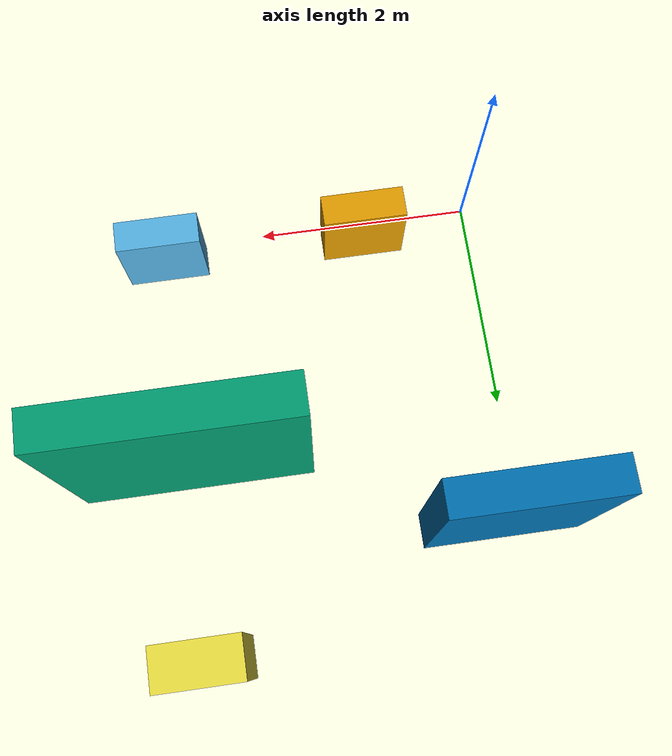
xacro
<?xml version="1.0" ?>
<robot name="library_demo"
       xmlns:xacro="http://www.ros.org/wiki/xacro">

  <!-- Gazebo/Moveit "world" with two bookshelves and one "counter"

       (C) 2021 fnh, hendrich@informatik.uni-hamburg.de
  -->
  <property name="r0" value="0.3" />
  <property name="dr" value="0.04" />
  <property name="pi2" value="6.283" />

  <xacro:include filename="$(find tams_books_world)/urdf/book_cube.xacro" />
  <xacro:include filename="$(find tams_books_world)/urdf/vintage_shelf_1.xacro" />
  <xacro:include filename="$(find tams_books_world)/urdf/vintage_shelf_2.xacro" />
  <xacro:include filename="$(find tams_books_world)/urdf/vintage_shelf_3.xacro" />
  <xacro:include filename="$(find tams_books_world)/urdf/vintage_shelf_4.xacro" />
  <xacro:include filename="$(find tams_books_world)/urdf/vintage_shelf_5.xacro" />

  <link name="world" />

  <!-- two bookshelves on floating joints -->

  <joint name="vintage_shelf_1_joint" type="floating">
    <parent link="world" />
    <child  link="vintage_shelf_1_link" />
    <origin xyz="1 0 0" rpy="0 0 0" />
  </joint>

  <joint name="vintage_shelf_2_joint" type="floating">
    <parent link="world" />
    <child  link="vintage_shelf_2_link" />
    <origin xyz="3 0 0" rpy="0 0 0" />
  </joint>

  <joint name="vintage_shelf_3_joint" type="floating">
    <parent link="world" />
    <child  link="vintage_shelf_3_link" />
    <origin xyz="3 2 0" rpy="0 0 0" />
  </joint>

  <joint name="vintage_shelf_4_joint" type="floating">
    <parent link="world" />
    <child  link="vintage_shelf_4_link" />
    <origin xyz="3 4 0" rpy="0 0 0" />
  </joint>

  <joint name="vintage_shelf_5_joint" type="floating">
    <parent link="world" />
    <child  link="vintage_shelf_5_link" />
    <origin xyz="0 3 0" rpy="0 0 0" />
  </joint>

</robot>

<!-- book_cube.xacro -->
<robot name="book_cube"
       xmlns:controller="http://playerstage.sourceforge.net/gazebo/xmlschema/#controller"
       xmlns:interface="http://playerstage.sourceforge.net/gazebo/xmlschema/#interface"
       xmlns:sensor="http://playerstage.sourceforge.net/gazebo/xmlschema/#sensor"
       xmlns:xacro="http://www.ros.org/wiki/xacro">
  <!--
       basic ROS xacro macro for a "book": a cube with textures.
       Origin and center of mass are at the center of the mesh.

       (C) 2019 fnh, hendrich@informatik.uni-hamburg.de
  -->

<xacro:macro name="book_cube" params="name weight mesh xsize ysize zsize">

  <!-- main body with Collada mesh for both visual and collision -->
  <link name="${name}_link">
    <inertial>
      <mass value="${weight}"/>
      <origin rpy="0 0 0" xyz="0 0 0"/>
      <inertia ixx="${weight/12*(ysize*ysize+zsize*zsize)}"
               iyy="${weight/12*(xsize*xsize+zsize*zsize)}"
               izz="${weight/12*(xsize*xsize+ysize*ysize)}"
               ixy="0" ixz="0" iyz="0" />
    </inertial>
    <collision>
      <origin rpy="0 0 0" xyz="0 0 0"/>
      <geometry>
        <box size="${xsize} ${ysize} ${zsize}" rpy="0 0 0" />
      </geometry>
    </collision>
    <visual>
      <origin rpy="0 0 0" xyz="0 0 0"/>
      <geometry>
        <mesh filename="package://tams_books_world/meshes/${mesh}" scale="${0.5*xsize} ${0.5*ysize} ${0.5*zsize}" />
      </geometry>
    </visual>
  </link>
  <gazebo reference="${name}_link">
    <!-- material/texture definition for Gazebo -->
    <turnGravityOff>false</turnGravityOff>
    <selfCollide>true</selfCollide>
    <mu1>1</mu1>
    <mu2>1</mu2>
    <kp>10000000.0</kp>
    <kd>10.0</kd>
  </gazebo>
</xacro:macro>

</robot>
